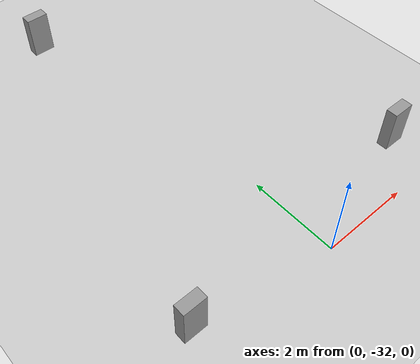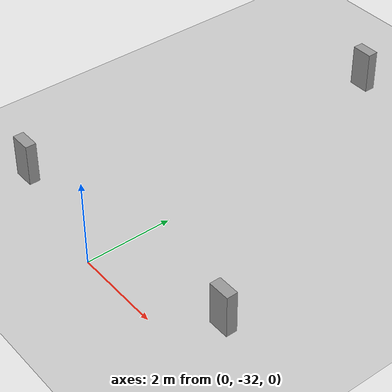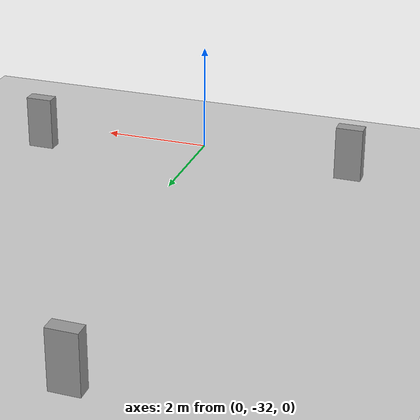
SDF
<sdf version="1.7">
 <world name="default">
  <model name="ground_plane">
   <static>1</static>
   <link name="link">
    <collision name="collision">
     <geometry><plane><normal>0 0 1</normal><size>100 100</size></plane></geometry>
     <surface>
      <contact><collide_bitmask>65535</collide_bitmask></contact>
      <friction><ode><mu>100</mu><mu2>50</mu2></ode></friction>
     </surface>
    </collision>
    <visual name="visual">
     <cast_shadows>0</cast_shadows>
     <geometry><plane><normal>0 0 1</normal><size>100 100</size></plane></geometry>
     <material>
      <script><uri>file://media/materials/scripts/gazebo.material</uri><name>Gazebo/Grey</name></script>
     </material>
    </visual>
   </link>
  </model>
  <model name="box_race_car_clone_18">
   <link name="link">
    <inertial>
     <mass>1</mass>
     <inertia>
      <ixx>0.166667</ixx>
      <ixy>0</ixy>
      <ixz>0</ixz>
      <iyy>0.166667</iyy>
      <iyz>0</iyz>
      <izz>0.166667</izz>
     </inertia>
    </inertial>
    <visual name="visual">
     <geometry><box><size>0.5 0.25 1</size></box></geometry>
     <material>
      <script><name>Gazebo/Grey</name><uri>file://media/materials/scripts/gazebo.material</uri></script>
      <shader type="pixel"><normal_map>__default__</normal_map></shader>
      <ambient>0.3 0.3 0.3 1</ambient>
      <diffuse>0.7 0.7 0.7 1</diffuse>
      <specular>0.01 0.01 0.01 1</specular>
      <emissive>0 0 0 1</emissive>
     </material>
    </visual>
    <collision name="collision">
     <geometry><box><size>0.5 0.25 1</size></box></geometry>
     <surface>
      <friction>
       <ode><mu>1</mu><mu2>1</mu2><fdir1>0 0 0</fdir1><slip1>0</slip1><slip2>0</slip2></ode>
       <torsional>
        <coefficient>1</coefficient>
        <patch_radius>0</patch_radius>
        <surface_radius>0</surface_radius>
        <use_patch_radius>1</use_patch_radius>
        <ode><slip>0</slip></ode>
       </torsional>
      </friction>
      <bounce><restitution_coefficient>0</restitution_coefficient><threshold>1e+06</threshold></bounce>
      <contact>
       <collide_without_contact>0</collide_without_contact>
       <collide_without_contact_bitmask>1</collide_without_contact_bitmask>
       <collide_bitmask>1</collide_bitmask>
       <ode>
        <soft_cfm>0</soft_cfm>
        <soft_erp>0.2</soft_erp>
        <kp>1e+13</kp>
        <kd>1</kd>
        <max_vel>0.01</max_vel>
        <min_depth>0</min_depth>
       </ode>
       <bullet>
        <split_impulse>1</split_impulse>
        <split_impulse_penetration_threshold>-0.01</split_impulse_penetration_threshold>
        <soft_cfm>0</soft_cfm>
        <soft_erp>0.2</soft_erp>
        <kp>1e+13</kp>
        <kd>1</kd>
       </bullet>
      </contact>
     </surface>
    </collision>
   </link>
   <static>0</static>
   <pose>-3 -31.4954 0.499999 0 -4e-06 0.000414</pose>
  </model>
  <model name="box_race_car_clone_19">
   <link name="link">
    <inertial>
     <mass>1</mass>
     <inertia>
      <ixx>0.166667</ixx>
      <ixy>0</ixy>
      <ixz>0</ixz>
      <iyy>0.166667</iyy>
      <iyz>0</iyz>
      <izz>0.166667</izz>
     </inertia>
    </inertial>
    <visual name="visual">
     <geometry><box><size>0.5 0.25 1</size></box></geometry>
     <material>
      <script><name>Gazebo/Grey</name><uri>file://media/materials/scripts/gazebo.material</uri></script>
      <shader type="pixel"><normal_map>__default__</normal_map></shader>
      <ambient>0.3 0.3 0.3 1</ambient>
      <diffuse>0.7 0.7 0.7 1</diffuse>
      <specular>0.01 0.01 0.01 1</specular>
      <emissive>0 0 0 1</emissive>
     </material>
    </visual>
    <collision name="collision">
     <geometry><box><size>0.5 0.25 1</size></box></geometry>
     <surface>
      <friction>
       <ode><mu>1</mu><mu2>1</mu2><fdir1>0 0 0</fdir1><slip1>0</slip1><slip2>0</slip2></ode>
       <torsional>
        <coefficient>1</coefficient>
        <patch_radius>0</patch_radius>
        <surface_radius>0</surface_radius>
        <use_patch_radius>1</use_patch_radius>
        <ode><slip>0</slip></ode>
       </torsional>
      </friction>
      <bounce><restitution_coefficient>0</restitution_coefficient><threshold>1e+06</threshold></bounce>
      <contact>
       <collide_without_contact>0</collide_without_contact>
       <collide_without_contact_bitmask>1</collide_without_contact_bitmask>
       <collide_bitmask>1</collide_bitmask>
       <ode>
        <soft_cfm>0</soft_cfm>
        <soft_erp>0.2</soft_erp>
        <kp>1e+13</kp>
        <kd>1</kd>
        <max_vel>0.01</max_vel>
        <min_depth>0</min_depth>
       </ode>
       <bullet>
        <split_impulse>1</split_impulse>
        <split_impulse_penetration_threshold>-0.01</split_impulse_penetration_threshold>
        <soft_cfm>0</soft_cfm>
        <soft_erp>0.2</soft_erp>
        <kp>1e+13</kp>
        <kd>1</kd>
       </bullet>
      </contact>
     </surface>
    </collision>
   </link>
   <static>0</static>
   <pose>3 -31 0.499999 -1e-06 5e-06 -0.000133</pose>
  </model>
  <model name="box_race_car_clone_38">
   <link name="link">
    <inertial>
     <mass>1</mass>
     <inertia>
      <ixx>0.166667</ixx>
      <ixy>0</ixy>
      <ixz>0</ixz>
      <iyy>0.166667</iyy>
      <iyz>0</iyz>
      <izz>0.166667</izz>
     </inertia>
    </inertial>
    <visual name="visual">
     <geometry><box><size>0.5 0.25 1</size></box></geometry>
     <material>
      <script><name>Gazebo/Grey</name><uri>file://media/materials/scripts/gazebo.material</uri></script>
      <shader type="pixel"><normal_map>__default__</normal_map></shader>
      <ambient>0.3 0.3 0.3 1</ambient>
      <diffuse>0.7 0.7 0.7 1</diffuse>
      <specular>0.01 0.01 0.01 1</specular>
      <emissive>0 0 0 1</emissive>
     </material>
    </visual>
    <collision name="collision">
     <geometry><box><size>0.5 0.25 1</size></box></geometry>
     <surface>
      <friction>
       <ode><mu>1</mu><mu2>1</mu2><fdir1>0 0 0</fdir1><slip1>0</slip1><slip2>0</slip2></ode>
       <torsional>
        <coefficient>1</coefficient>
        <patch_radius>0</patch_radius>
        <surface_radius>0</surface_radius>
        <use_patch_radius>1</use_patch_radius>
        <ode><slip>0</slip></ode>
       </torsional>
      </friction>
      <bounce><restitution_coefficient>0</restitution_coefficient><threshold>1e+06</threshold></bounce>
      <contact>
       <collide_without_contact>0</collide_without_contact>
       <collide_without_contact_bitmask>1</collide_without_contact_bitmask>
       <collide_bitmask>1</collide_bitmask>
       <ode>
        <soft_cfm>0</soft_cfm>
        <soft_erp>0.2</soft_erp>
        <kp>1e+13</kp>
        <kd>1</kd>
        <max_vel>0.01</max_vel>
        <min_depth>0</min_depth>
       </ode>
       <bullet>
        <split_impulse>1</split_impulse>
        <split_impulse_penetration_threshold>-0.01</split_impulse_penetration_threshold>
        <soft_cfm>0</soft_cfm>
        <soft_erp>0.2</soft_erp>
        <kp>1e+13</kp>
        <kd>1</kd>
       </bullet>
      </contact>
     </surface>
    </collision>
   </link>
   <static>0</static>
   <pose>-0.999997 -23.4521 0.499998 4e-06 5e-06 4.9e-05</pose>
  </model>
 </world>
</sdf>
